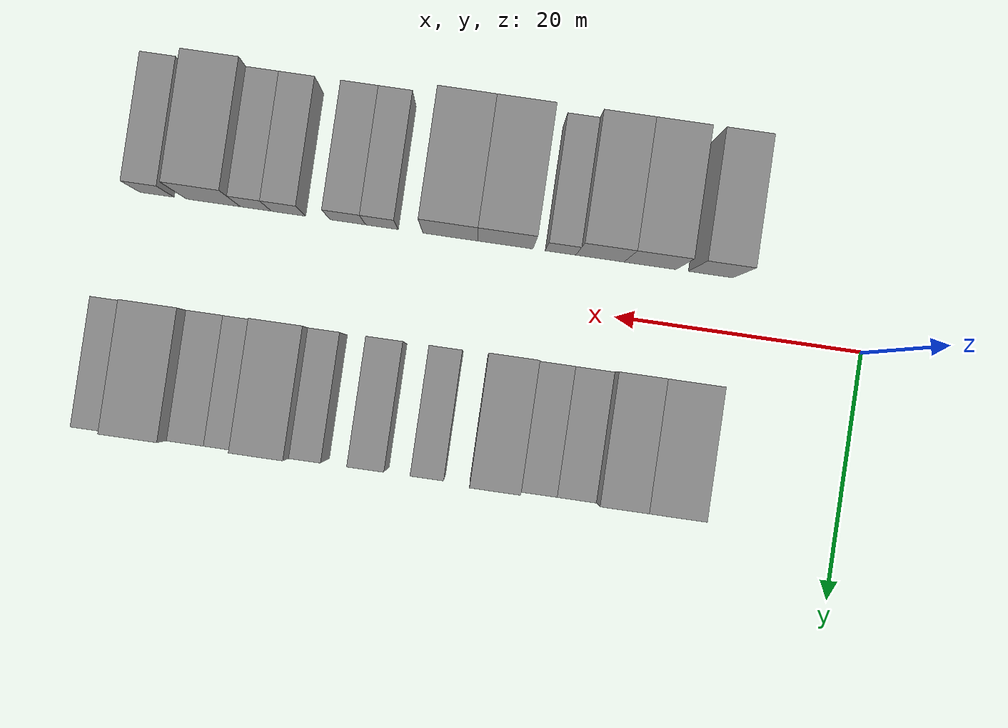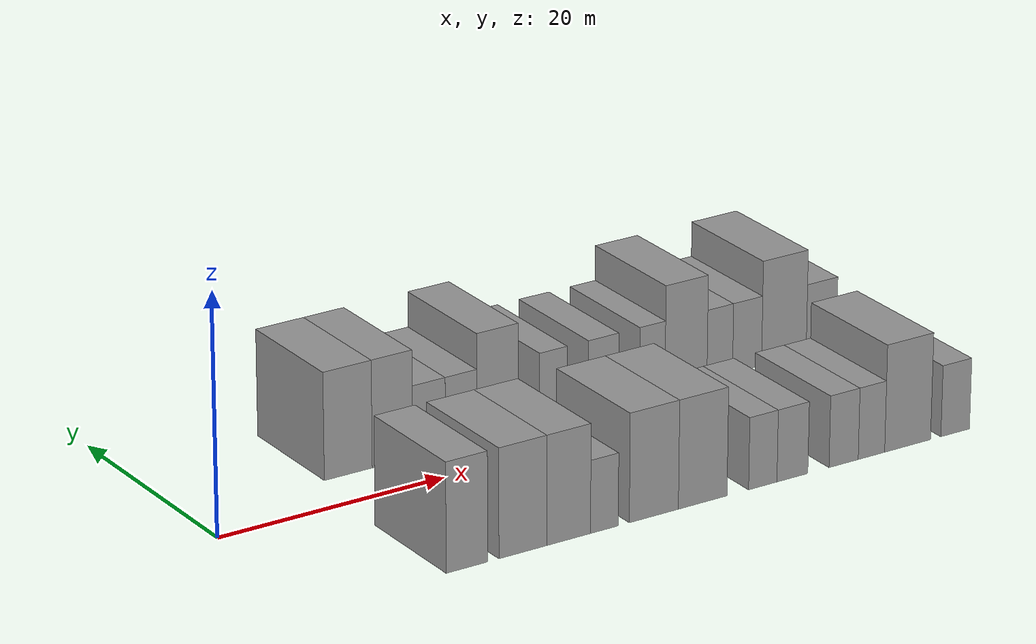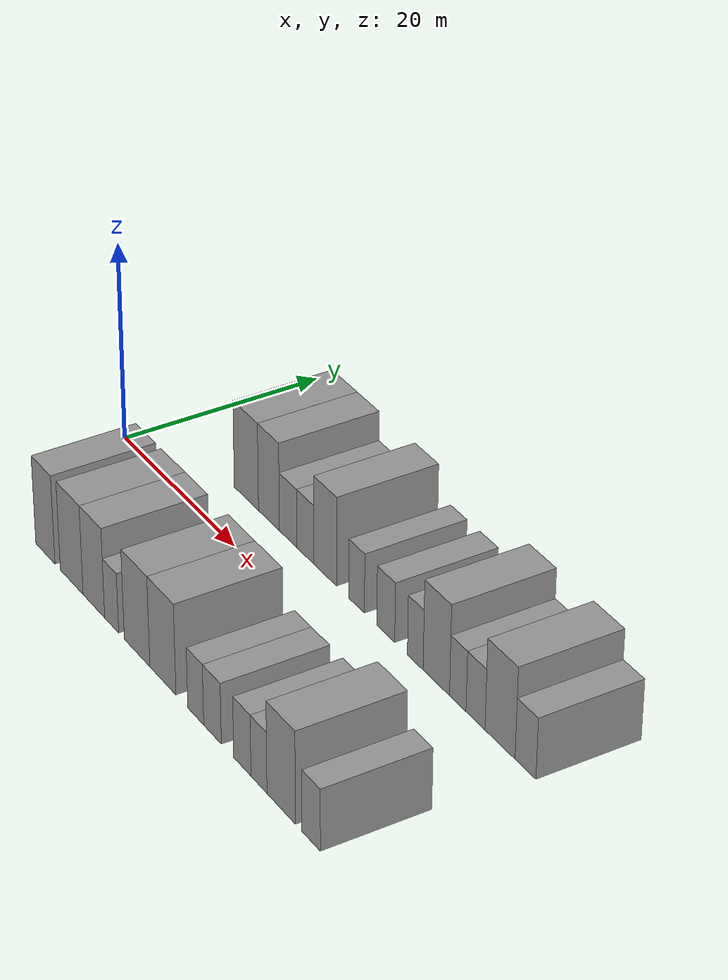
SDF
<sdf version="1.6">
 <world name="default">
  <model name="building_1">
   <static>1</static>
   <pose>14.1490 9.5000 0 0.000000 0.000000 1.570796</pose>
   <link name="link">
    <pose>0 0 4.50 0 0 0</pose>
    <collision name="collision"><geometry><box><size>10.0000 4.2981 9.0000</size></box></geometry></collision>
    <visual name="visual">
     <cast_shadows>0</cast_shadows>
     <geometry><box><size>10.0000 4.2981 9.0000</size></box></geometry>
     <material>
      <script>
       <uri>model://grey_wall/materials/scripts</uri>
       <uri>model://grey_wall/materials/textures</uri>
       <name>vrc/grey_wall</name>
      </script>
     </material>
    </visual>
   </link>
  </model>
  <model name="building_2">
   <static>1</static>
   <pose>18.1220 9.5000 0 0.000000 0.000000 1.570796</pose>
   <link name="link">
    <pose>0 0 4.50 0 0 0</pose>
    <collision name="collision"><geometry><box><size>10.0000 3.6478 9.0000</size></box></geometry></collision>
    <visual name="visual">
     <cast_shadows>0</cast_shadows>
     <geometry><box><size>10.0000 3.6478 9.0000</size></box></geometry>
     <material>
      <script>
       <uri>model://grey_wall/materials/scripts</uri>
       <uri>model://grey_wall/materials/textures</uri>
       <name>vrc/grey_wall</name>
      </script>
     </material>
    </visual>
   </link>
  </model>
  <model name="building_3">
   <static>1</static>
   <pose>21.4412 9.5000 0 0.000000 0.000000 1.570796</pose>
   <link name="link">
    <pose>0 0 3.00 0 0 0</pose>
    <collision name="collision"><geometry><box><size>10.0000 2.9907 6.0000</size></box></geometry></collision>
    <visual name="visual">
     <cast_shadows>0</cast_shadows>
     <geometry><box><size>10.0000 2.9907 6.0000</size></box></geometry>
     <material>
      <script>
       <uri>model://grey_wall/materials/scripts</uri>
       <uri>model://grey_wall/materials/textures</uri>
       <name>vrc/grey_wall</name>
      </script>
     </material>
    </visual>
   </link>
  </model>
  <model name="building_4">
   <static>1</static>
   <pose>24.3763 9.5000 0 0.000000 0.000000 1.570796</pose>
   <link name="link">
    <pose>0 0 3.00 0 0 0</pose>
    <collision name="collision"><geometry><box><size>10.0000 2.8793 6.0000</size></box></geometry></collision>
    <visual name="visual">
     <cast_shadows>0</cast_shadows>
     <geometry><box><size>10.0000 2.8793 6.0000</size></box></geometry>
     <material>
      <script>
       <uri>model://grey_wall/materials/scripts</uri>
       <uri>model://grey_wall/materials/textures</uri>
       <name>vrc/grey_wall</name>
      </script>
     </material>
    </visual>
   </link>
  </model>
  <model name="building_5">
   <static>1</static>
   <pose>27.7177 9.5000 0 0.000000 0.000000 1.570796</pose>
   <link name="link">
    <pose>0 0 4.50 0 0 0</pose>
    <collision name="collision"><geometry><box><size>10.0000 3.8036 9.0000</size></box></geometry></collision>
    <visual name="visual">
     <cast_shadows>0</cast_shadows>
     <geometry><box><size>10.0000 3.8036 9.0000</size></box></geometry>
     <material>
      <script>
       <uri>model://grey_wall/materials/scripts</uri>
       <uri>model://grey_wall/materials/textures</uri>
       <name>vrc/grey_wall</name>
      </script>
     </material>
    </visual>
   </link>
  </model>
  <model name="building_6">
   <static>1</static>
   <pose>32.9033 9.5000 0 0.000000 0.000000 1.570796</pose>
   <link name="link">
    <pose>0 0 3.00 0 0 0</pose>
    <collision name="collision"><geometry><box><size>10.0000 2.5676 6.0000</size></box></geometry></collision>
    <visual name="visual">
     <cast_shadows>0</cast_shadows>
     <geometry><box><size>10.0000 2.5676 6.0000</size></box></geometry>
     <material>
      <script>
       <uri>model://grey_wall/materials/scripts</uri>
       <uri>model://grey_wall/materials/textures</uri>
       <name>vrc/grey_wall</name>
      </script>
     </material>
    </visual>
   </link>
  </model>
  <model name="building_7">
   <static>1</static>
   <pose>37.6088 9.5000 0 0.000000 0.000000 1.570796</pose>
   <link name="link">
    <pose>0 0 3.00 0 0 0</pose>
    <collision name="collision"><geometry><box><size>10.0000 2.8434 6.0000</size></box></geometry></collision>
    <visual name="visual">
     <cast_shadows>0</cast_shadows>
     <geometry><box><size>10.0000 2.8434 6.0000</size></box></geometry>
     <material>
      <script>
       <uri>model://grey_wall/materials/scripts</uri>
       <uri>model://grey_wall/materials/textures</uri>
       <name>vrc/grey_wall</name>
      </script>
     </material>
    </visual>
   </link>
  </model>
  <model name="building_8">
   <static>1</static>
   <pose>42.2495 9.5000 0 0.000000 0.000000 1.570796</pose>
   <link name="link">
    <pose>0 0 3.00 0 0 0</pose>
    <collision name="collision"><geometry><box><size>10.0000 2.4380 6.0000</size></box></geometry></collision>
    <visual name="visual">
     <cast_shadows>0</cast_shadows>
     <geometry><box><size>10.0000 2.4380 6.0000</size></box></geometry>
     <material>
      <script>
       <uri>model://grey_wall/materials/scripts</uri>
       <uri>model://grey_wall/materials/textures</uri>
       <name>vrc/grey_wall</name>
      </script>
     </material>
    </visual>
   </link>
  </model>
  <model name="building_9">
   <static>1</static>
   <pose>45.4868 9.5000 0 0.000000 0.000000 1.570796</pose>
   <link name="link">
    <pose>0 0 4.50 0 0 0</pose>
    <collision name="collision"><geometry><box><size>10.0000 4.0367 9.0000</size></box></geometry></collision>
    <visual name="visual">
     <cast_shadows>0</cast_shadows>
     <geometry><box><size>10.0000 4.0367 9.0000</size></box></geometry>
     <material>
      <script>
       <uri>model://grey_wall/materials/scripts</uri>
       <uri>model://grey_wall/materials/textures</uri>
       <name>vrc/grey_wall</name>
      </script>
     </material>
    </visual>
   </link>
  </model>
  <model name="building_10">
   <static>1</static>
   <pose>48.7472 9.5000 0 0.000000 0.000000 1.570796</pose>
   <link name="link">
    <pose>0 0 3.00 0 0 0</pose>
    <collision name="collision"><geometry><box><size>10.0000 2.4840 6.0000</size></box></geometry></collision>
    <visual name="visual">
     <cast_shadows>0</cast_shadows>
     <geometry><box><size>10.0000 2.4840 6.0000</size></box></geometry>
     <material>
      <script>
       <uri>model://grey_wall/materials/scripts</uri>
       <uri>model://grey_wall/materials/textures</uri>
       <name>vrc/grey_wall</name>
      </script>
     </material>
    </visual>
   </link>
  </model>
  <model name="building_11">
   <static>1</static>
   <pose>51.4006 9.5000 0 0.000000 0.000000 1.570796</pose>
   <link name="link">
    <pose>0 0 3.00 0 0 0</pose>
    <collision name="collision"><geometry><box><size>10.0000 2.8228 6.0000</size></box></geometry></collision>
    <visual name="visual">
     <cast_shadows>0</cast_shadows>
     <geometry><box><size>10.0000 2.8228 6.0000</size></box></geometry>
     <material>
      <script>
       <uri>model://grey_wall/materials/scripts</uri>
       <uri>model://grey_wall/materials/textures</uri>
       <name>vrc/grey_wall</name>
      </script>
     </material>
    </visual>
   </link>
  </model>
  <model name="building_12">
   <static>1</static>
   <pose>55.0039 9.5000 0 0.000000 0.000000 1.570796</pose>
   <link name="link">
    <pose>0 0 4.50 0 0 0</pose>
    <collision name="collision"><geometry><box><size>10.0000 4.3839 9.0000</size></box></geometry></collision>
    <visual name="visual">
     <cast_shadows>0</cast_shadows>
     <geometry><box><size>10.0000 4.3839 9.0000</size></box></geometry>
     <material>
      <script>
       <uri>model://grey_wall/materials/scripts</uri>
       <uri>model://grey_wall/materials/textures</uri>
       <name>vrc/grey_wall</name>
      </script>
     </material>
    </visual>
   </link>
  </model>
  <model name="building_13">
   <static>1</static>
   <pose>58.6897 9.5000 0 0.000000 0.000000 1.570796</pose>
   <link name="link">
    <pose>0 0 3.00 0 0 0</pose>
    <collision name="collision"><geometry><box><size>10.0000 2.9877 6.0000</size></box></geometry></collision>
    <visual name="visual">
     <cast_shadows>0</cast_shadows>
     <geometry><box><size>10.0000 2.9877 6.0000</size></box></geometry>
     <material>
      <script>
       <uri>model://grey_wall/materials/scripts</uri>
       <uri>model://grey_wall/materials/textures</uri>
       <name>vrc/grey_wall</name>
      </script>
     </material>
    </visual>
   </link>
  </model>
  <model name="building_50">
   <static>1</static>
   <pose>12.8102 -9.5000 0 0.000000 0.000000 1.570796</pose>
   <link name="link">
    <pose>0 0 4.50 0 0 0</pose>
    <collision name="collision"><geometry><box><size>10.0000 3.6204 9.0000</size></box></geometry></collision>
    <visual name="visual">
     <cast_shadows>0</cast_shadows>
     <geometry><box><size>10.0000 3.6204 9.0000</size></box></geometry>
     <material>
      <script>
       <uri>model://grey_wall/materials/scripts</uri>
       <uri>model://grey_wall/materials/textures</uri>
       <name>vrc/grey_wall</name>
      </script>
     </material>
    </visual>
   </link>
  </model>
  <model name="building_51">
   <static>1</static>
   <pose>17.7341 -9.5000 0 0.000000 0.000000 1.570796</pose>
   <link name="link">
    <pose>0 0 4.50 0 0 0</pose>
    <collision name="collision"><geometry><box><size>10.0000 4.2273 9.0000</size></box></geometry></collision>
    <visual name="visual">
     <cast_shadows>0</cast_shadows>
     <geometry><box><size>10.0000 4.2273 9.0000</size></box></geometry>
     <material>
      <script>
       <uri>model://grey_wall/materials/scripts</uri>
       <uri>model://grey_wall/materials/textures</uri>
       <name>vrc/grey_wall</name>
      </script>
     </material>
    </visual>
   </link>
  </model>
  <model name="building_52">
   <static>1</static>
   <pose>21.8055 -9.5000 0 0.000000 0.000000 1.570796</pose>
   <link name="link">
    <pose>0 0 4.50 0 0 0</pose>
    <collision name="collision"><geometry><box><size>10.0000 3.9156 9.0000</size></box></geometry></collision>
    <visual name="visual">
     <cast_shadows>0</cast_shadows>
     <geometry><box><size>10.0000 3.9156 9.0000</size></box></geometry>
     <material>
      <script>
       <uri>model://grey_wall/materials/scripts</uri>
       <uri>model://grey_wall/materials/textures</uri>
       <name>vrc/grey_wall</name>
      </script>
     </material>
    </visual>
   </link>
  </model>
  <model name="building_53">
   <static>1</static>
   <pose>25.0127 -9.5000 0 0.000000 0.000000 1.570796</pose>
   <link name="link">
    <pose>0 0 3.00 0 0 0</pose>
    <collision name="collision"><geometry><box><size>10.0000 2.4988 6.0000</size></box></geometry></collision>
    <visual name="visual">
     <cast_shadows>0</cast_shadows>
     <geometry><box><size>10.0000 2.4988 6.0000</size></box></geometry>
     <material>
      <script>
       <uri>model://grey_wall/materials/scripts</uri>
       <uri>model://grey_wall/materials/textures</uri>
       <name>vrc/grey_wall</name>
      </script>
     </material>
    </visual>
   </link>
  </model>
  <model name="building_54">
   <static>1</static>
   <pose>29.4958 -9.5000 0 0.000000 0.000000 1.570796</pose>
   <link name="link">
    <pose>0 0 4.50 0 0 0</pose>
    <collision name="collision"><geometry><box><size>10.0000 4.4674 9.0000</size></box></geometry></collision>
    <visual name="visual">
     <cast_shadows>0</cast_shadows>
     <geometry><box><size>10.0000 4.4674 9.0000</size></box></geometry>
     <material>
      <script>
       <uri>model://grey_wall/materials/scripts</uri>
       <uri>model://grey_wall/materials/textures</uri>
       <name>vrc/grey_wall</name>
      </script>
     </material>
    </visual>
   </link>
  </model>
  <model name="building_55">
   <static>1</static>
   <pose>33.9651 -9.5000 0 0.000000 0.000000 1.570796</pose>
   <link name="link">
    <pose>0 0 4.50 0 0 0</pose>
    <collision name="collision"><geometry><box><size>10.0000 4.4711 9.0000</size></box></geometry></collision>
    <visual name="visual">
     <cast_shadows>0</cast_shadows>
     <geometry><box><size>10.0000 4.4711 9.0000</size></box></geometry>
     <material>
      <script>
       <uri>model://grey_wall/materials/scripts</uri>
       <uri>model://grey_wall/materials/textures</uri>
       <name>vrc/grey_wall</name>
      </script>
     </material>
    </visual>
   </link>
  </model>
  <model name="building_56">
   <static>1</static>
   <pose>39.5212 -9.5000 0 0.000000 0.000000 1.570796</pose>
   <link name="link">
    <pose>0 0 3.00 0 0 0</pose>
    <collision name="collision"><geometry><box><size>10.0000 2.6412 6.0000</size></box></geometry></collision>
    <visual name="visual">
     <cast_shadows>0</cast_shadows>
     <geometry><box><size>10.0000 2.6412 6.0000</size></box></geometry>
     <material>
      <script>
       <uri>model://grey_wall/materials/scripts</uri>
       <uri>model://grey_wall/materials/textures</uri>
       <name>vrc/grey_wall</name>
      </script>
     </material>
    </visual>
   </link>
  </model>
  <model name="building_57">
   <static>1</static>
   <pose>42.2902 -9.5000 0 0.000000 0.000000 1.570796</pose>
   <link name="link">
    <pose>0 0 3.00 0 0 0</pose>
    <collision name="collision"><geometry><box><size>10.0000 2.8967 6.0000</size></box></geometry></collision>
    <visual name="visual">
     <cast_shadows>0</cast_shadows>
     <geometry><box><size>10.0000 2.8967 6.0000</size></box></geometry>
     <material>
      <script>
       <uri>model://grey_wall/materials/scripts</uri>
       <uri>model://grey_wall/materials/textures</uri>
       <name>vrc/grey_wall</name>
      </script>
     </material>
    </visual>
   </link>
  </model>
  <model name="building_58">
   <static>1</static>
   <pose>47.1221 -9.5000 0 0.000000 0.000000 1.570796</pose>
   <link name="link">
    <pose>0 0 3.00 0 0 0</pose>
    <collision name="collision"><geometry><box><size>10.0000 2.7672 6.0000</size></box></geometry></collision>
    <visual name="visual">
     <cast_shadows>0</cast_shadows>
     <geometry><box><size>10.0000 2.7672 6.0000</size></box></geometry>
     <material>
      <script>
       <uri>model://grey_wall/materials/scripts</uri>
       <uri>model://grey_wall/materials/textures</uri>
       <name>vrc/grey_wall</name>
      </script>
     </material>
    </visual>
   </link>
  </model>
  <model name="building_59">
   <static>1</static>
   <pose>49.7668 -9.5000 0 0.000000 0.000000 1.570796</pose>
   <link name="link">
    <pose>0 0 3.00 0 0 0</pose>
    <collision name="collision"><geometry><box><size>10.0000 2.5222 6.0000</size></box></geometry></collision>
    <visual name="visual">
     <cast_shadows>0</cast_shadows>
     <geometry><box><size>10.0000 2.5222 6.0000</size></box></geometry>
     <material>
      <script>
       <uri>model://grey_wall/materials/scripts</uri>
       <uri>model://grey_wall/materials/textures</uri>
       <name>vrc/grey_wall</name>
      </script>
     </material>
    </visual>
   </link>
  </model>
  <model name="building_60">
   <static>1</static>
   <pose>53.2330 -9.5000 0 0.000000 0.000000 1.570796</pose>
   <link name="link">
    <pose>0 0 4.50 0 0 0</pose>
    <collision name="collision"><geometry><box><size>10.0000 4.4102 9.0000</size></box></geometry></collision>
    <visual name="visual">
     <cast_shadows>0</cast_shadows>
     <geometry><box><size>10.0000 4.4102 9.0000</size></box></geometry>
     <material>
      <script>
       <uri>model://grey_wall/materials/scripts</uri>
       <uri>model://grey_wall/materials/textures</uri>
       <name>vrc/grey_wall</name>
      </script>
     </material>
    </visual>
   </link>
  </model>
  <model name="building_61">
   <static>1</static>
   <pose>57.8266 -9.5000 0 0.000000 0.000000 1.570796</pose>
   <link name="link">
    <pose>0 0 3.00 0 0 0</pose>
    <collision name="collision"><geometry><box><size>10.0000 2.7769 6.0000</size></box></geometry></collision>
    <visual name="visual">
     <cast_shadows>0</cast_shadows>
     <geometry><box><size>10.0000 2.7769 6.0000</size></box></geometry>
     <material>
      <script>
       <uri>model://grey_wall/materials/scripts</uri>
       <uri>model://grey_wall/materials/textures</uri>
       <name>vrc/grey_wall</name>
      </script>
     </material>
    </visual>
   </link>
  </model>
 </world>
</sdf>
